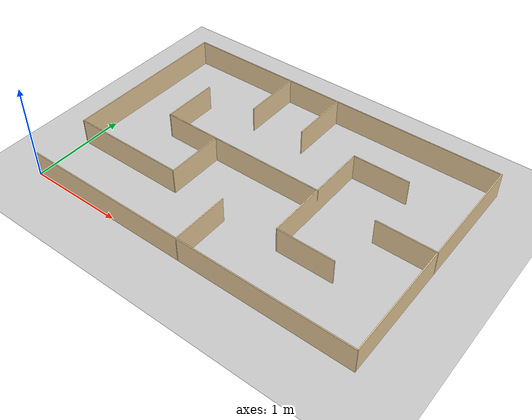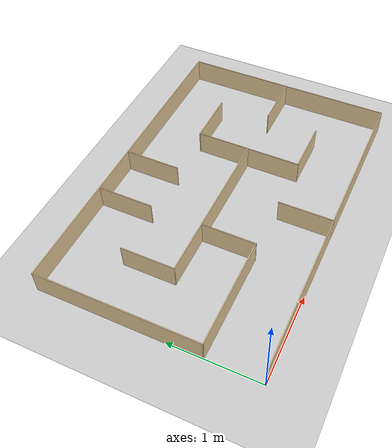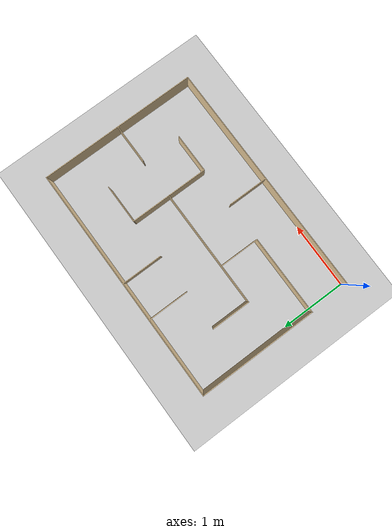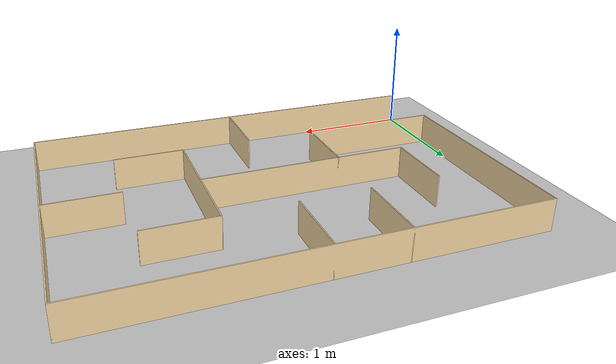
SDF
<?xml version="1.0" ?>
<sdf version="1.4">
  <world name="default">
    <scene>
      <ambient>0.5 0.5 0.5 1.0</ambient>
      <shadows>0</shadows>
    </scene>
    <include>
      <uri>model://ground_plane</uri>
    </include>
    <include>
      <uri>model://sun</uri>
    </include>

    <model name='labyrinth_normal2'>
    <pose frame=''>1.81 1.21 0 0 -0 0</pose>
    <link name='Wall_0'>
      <collision name='Wall_0_Collision'>
        <geometry>
          <box>
            <size>1.82 0.01 0.28</size>
          </box>
        </geometry>
        <pose frame=''>0 0 0.14 0 -0 0</pose>
      </collision>
      <visual name='Wall_0_Visual'>
        <pose frame=''>0 0 0.14 0 -0 0</pose>
        <geometry>
          <box>
            <size>1.82 0.01 0.28</size>
          </box>
        </geometry>
        <material>
          <script>
            <uri>file://media/materials/scripts/gazebo.material</uri>
            <name>Gazebo/Grey</name>
          </script>
          <ambient>0.921569 0.807843 0.615686 1</ambient>
        </material>
        <meta>
          <layer>0</layer>
        </meta>
      </visual>
      <pose frame=''>-1.81 0.305 0 0 -0 1.5708</pose>
    </link>
    <link name='Wall_10'>
      <collision name='Wall_10_Collision'>
        <geometry>
          <box>
            <size>0.61 0.01 0.28</size>
          </box>
        </geometry>
        <pose frame=''>0 0 0.14 0 -0 0</pose>
      </collision>
      <visual name='Wall_10_Visual'>
        <pose frame=''>0 0 0.14 0 -0 0</pose>
        <geometry>
          <box>
            <size>0.61 0.01 0.28</size>
          </box>
        </geometry>
        <material>
          <script>
            <uri>file://media/materials/scripts/gazebo.material</uri>
            <name>Gazebo/Grey</name>
          </script>
          <ambient>0.921569 0.807843 0.615686 1</ambient>
        </material>
        <meta>
          <layer>0</layer>
        </meta>
      </visual>
      <pose frame=''>1.51 0 0 0 -0 3.14159</pose>
    </link>
    <link name='Wall_12'>
      <collision name='Wall_12_Collision'>
        <geometry>
          <box>
            <size>0.63 0.01 0.28</size>
          </box>
        </geometry>
        <pose frame=''>0 0 0.14 0 -0 0</pose>
      </collision>
      <visual name='Wall_12_Visual'>
        <pose frame=''>0 0 0.14 0 -0 0</pose>
        <geometry>
          <box>
            <size>0.63 0.01 0.28</size>
          </box>
        </geometry>
        <material>
          <script>
            <uri>file://media/materials/scripts/gazebo.material</uri>
            <name>Gazebo/Grey</name>
          </script>
          <ambient>0.921569 0.807843 0.615686 1</ambient>
        </material>
        <meta>
          <layer>0</layer>
        </meta>
      </visual>
      <pose frame=''>-0.6 0.9 0 0 0 -1.5708</pose>
    </link>
    <link name='Wall_14'>
      <collision name='Wall_14_Collision'>
        <geometry>
          <box>
            <size>0.63 0.01 0.28</size>
          </box>
        </geometry>
        <pose frame=''>0 0 0.14 0 -0 0</pose>
      </collision>
      <visual name='Wall_14_Visual'>
        <pose frame=''>0 0 0.14 0 -0 0</pose>
        <geometry>
          <box>
            <size>0.63 0.01 0.28</size>
          </box>
        </geometry>
        <material>
          <script>
            <uri>file://media/materials/scripts/gazebo.material</uri>
            <name>Gazebo/Grey</name>
          </script>
          <ambient>0.921569 0.807843 0.615686 1</ambient>
        </material>
        <meta>
          <layer>0</layer>
        </meta>
      </visual>
      <pose frame=''>0 0.9 0 0 0 -1.5708</pose>
    </link>
    <link name='Wall_16'>
      <collision name='Wall_16_Collision'>
        <geometry>
          <box>
            <size>1.22 0.01 0.28</size>
          </box>
        </geometry>
        <pose frame=''>0 0 0.14 0 -0 0</pose>
      </collision>
      <visual name='Wall_16_Visual'>
        <pose frame=''>0 0 0.14 0 -0 0</pose>
        <geometry>
          <box>
            <size>1.22 0.01 0.28</size>
          </box>
        </geometry>
        <material>
          <script>
            <uri>file://media/materials/scripts/gazebo.material</uri>
            <name>Gazebo/Grey</name>
          </script>
          <ambient>0.921569 0.807843 0.615686 1</ambient>
        </material>
        <meta>
          <layer>0</layer>
        </meta>
      </visual>
      <pose frame=''>-1.205 -0.6 0 0 -0 0</pose>
    </link>
    <link name='Wall_18'>
      <collision name='Wall_18_Collision'>
        <geometry>
          <box>
            <size>0.61 0.01 0.28</size>
          </box>
        </geometry>
        <pose frame=''>0 0 0.14 0 -0 0</pose>
      </collision>
      <visual name='Wall_18_Visual'>
        <pose frame=''>0 0 0.14 0 -0 0</pose>
        <geometry>
          <box>
            <size>0.61 0.01 0.28</size>
          </box>
        </geometry>
        <material>
          <script>
            <uri>file://media/materials/scripts/gazebo.material</uri>
            <name>Gazebo/Grey</name>
          </script>
          <ambient>0.921569 0.807843 0.615686 1</ambient>
        </material>
        <meta>
          <layer>0</layer>
        </meta>
      </visual>
      <pose frame=''>-0.6 -0.3 0 0 -0 1.5708</pose>
    </link>
    <link name='Wall_2'>
      <collision name='Wall_2_Collision'>
        <geometry>
          <box>
            <size>3.63 0.01 0.28</size>
          </box>
        </geometry>
        <pose frame=''>0 0 0.14 0 -0 0</pose>
      </collision>
      <visual name='Wall_2_Visual'>
        <pose frame=''>0 0 0.14 0 -0 0</pose>
        <geometry>
          <box>
            <size>3.63 0.01 0.28</size>
          </box>
        </geometry>
        <material>
          <script>
            <uri>file://media/materials/scripts/gazebo.material</uri>
            <name>Gazebo/Grey</name>
          </script>
          <ambient>0.921569 0.807843 0.615686 1</ambient>
        </material>
        <meta>
          <layer>0</layer>
        </meta>
      </visual>
      <pose frame=''>0 1.21 0 0 -0 0</pose>
    </link>
    <link name='Wall_20'>
      <collision name='Wall_20_Collision'>
        <geometry>
          <box>
            <size>0.6 0.01 0.28</size>
          </box>
        </geometry>
        <pose frame=''>0 0 0.14 0 -0 0</pose>
      </collision>
      <visual name='Wall_20_Visual'>
        <pose frame=''>0 0 0.14 0 -0 0</pose>
        <geometry>
          <box>
            <size>0.6 0.01 0.28</size>
          </box>
        </geometry>
        <material>
          <script>
            <uri>file://media/materials/scripts/gazebo.material</uri>
            <name>Gazebo/Grey</name>
          </script>
          <ambient>0.921569 0.807843 0.615686 1</ambient>
        </material>
        <meta>
          <layer>0</layer>
        </meta>
      </visual>
      <pose frame=''>-1.2 0.295 0 0 0 -1.5708</pose>
    </link>
    <link name='Wall_22'>
      <collision name='Wall_22_Collision'>
        <geometry>
          <box>
            <size>1.81 0.01 0.28</size>
          </box>
        </geometry>
        <pose frame=''>0 0 0.14 0 -0 0</pose>
      </collision>
      <visual name='Wall_22_Visual'>
        <pose frame=''>0 0 0.14 0 -0 0</pose>
        <geometry>
          <box>
            <size>1.81 0.01 0.28</size>
          </box>
        </geometry>
        <material>
          <script>
            <uri>file://media/materials/scripts/gazebo.material</uri>
            <name>Gazebo/Grey</name>
          </script>
          <ambient>0.921569 0.807843 0.615686 1</ambient>
        </material>
        <meta>
          <layer>0</layer>
        </meta>
      </visual>
      <pose frame=''>-0.3 0 0 0 -0 0</pose>
    </link>
    <link name='Wall_24'>
      <collision name='Wall_24_Collision'>
        <geometry>
          <box>
            <size>1.21 0.01 0.28</size>
          </box>
        </geometry>
        <pose frame=''>0 0 0.14 0 -0 0</pose>
      </collision>
      <visual name='Wall_24_Visual'>
        <pose frame=''>0 0 0.14 0 -0 0</pose>
        <geometry>
          <box>
            <size>1.21 0.01 0.28</size>
          </box>
        </geometry>
        <material>
          <script>
            <uri>file://media/materials/scripts/gazebo.material</uri>
            <name>Gazebo/Grey</name>
          </script>
          <ambient>0.921569 0.807843 0.615686 1</ambient>
        </material>
        <meta>
          <layer>0</layer>
        </meta>
      </visual>
      <pose frame=''>0.6 0 0 0 0 -1.5708</pose>
    </link>
    <link name='Wall_26'>
      <collision name='Wall_26_Collision'>
        <geometry>
          <box>
            <size>0.6 0.01 0.28</size>
          </box>
        </geometry>
        <pose frame=''>0 0 0.14 0 -0 0</pose>
      </collision>
      <visual name='Wall_26_Visual'>
        <pose frame=''>0 0 0.14 0 -0 0</pose>
        <geometry>
          <box>
            <size>0.6 0.01 0.28</size>
          </box>
        </geometry>
        <material>
          <script>
            <uri>file://media/materials/scripts/gazebo.material</uri>
            <name>Gazebo/Grey</name>
          </script>
          <ambient>0.921569 0.807843 0.615686 1</ambient>
        </material>
        <meta>
          <layer>0</layer>
        </meta>
      </visual>
      <pose frame=''>0.895 0.6 0 0 -0 0</pose>
    </link>
    <link name='Wall_28'>
      <collision name='Wall_28_Collision'>
        <geometry>
          <box>
            <size>0.6 0.01 0.28</size>
          </box>
        </geometry>
        <pose frame=''>0 0 0.14 0 -0 0</pose>
      </collision>
      <visual name='Wall_28_Visual'>
        <pose frame=''>0 0 0.14 0 -0 0</pose>
        <geometry>
          <box>
            <size>0.6 0.01 0.28</size>
          </box>
        </geometry>
        <material>
          <script>
            <uri>file://media/materials/scripts/gazebo.material</uri>
            <name>Gazebo/Grey</name>
          </script>
          <ambient>0.921569 0.807843 0.615686 1</ambient>
        </material>
        <meta>
          <layer>0</layer>
        </meta>
      </visual>
      <pose frame=''>0.895 -0.6 0 0 -0 0</pose>
    </link>
    <link name='Wall_4'>
      <collision name='Wall_4_Collision'>
        <geometry>
          <box>
            <size>2.43 0.01 0.28</size>
          </box>
        </geometry>
        <pose frame=''>0 0 0.14 0 -0 0</pose>
      </collision>
      <visual name='Wall_4_Visual'>
        <pose frame=''>0 0 0.14 0 -0 0</pose>
        <geometry>
          <box>
            <size>2.43 0.01 0.28</size>
          </box>
        </geometry>
        <material>
          <script>
            <uri>file://media/materials/scripts/gazebo.material</uri>
            <name>Gazebo/Grey</name>
          </script>
          <ambient>0.921569 0.807843 0.615686 1</ambient>
        </material>
        <meta>
          <layer>0</layer>
        </meta>
      </visual>
      <pose frame=''>1.81 0 0 0 0 -1.5708</pose>
    </link>
    <link name='Wall_6'>
      <collision name='Wall_6_Collision'>
        <geometry>
          <box>
            <size>3.63 0.01 0.28</size>
          </box>
        </geometry>
        <pose frame=''>0 0 0.14 0 -0 0</pose>
      </collision>
      <visual name='Wall_6_Visual'>
        <pose frame=''>0 0 0.14 0 -0 0</pose>
        <geometry>
          <box>
            <size>3.63 0.01 0.28</size>
          </box>
        </geometry>
        <material>
          <script>
            <uri>file://media/materials/scripts/gazebo.material</uri>
            <name>Gazebo/Grey</name>
          </script>
          <ambient>0.921569 0.807843 0.615686 1</ambient>
        </material>
        <meta>
          <layer>0</layer>
        </meta>
      </visual>
      <pose frame=''>0 -1.21 0 0 -0 3.14159</pose>
    </link>
    <link name='Wall_8'>
      <collision name='Wall_8_Collision'>
        <geometry>
          <box>
            <size>0.61 0.01 0.28</size>
          </box>
        </geometry>
        <pose frame=''>0 0 0.14 0 -0 0</pose>
      </collision>
      <visual name='Wall_8_Visual'>
        <pose frame=''>0 0 0.14 0 -0 0</pose>
        <geometry>
          <box>
            <size>0.61 0.01 0.28</size>
          </box>
        </geometry>
        <material>
          <script>
            <uri>file://media/materials/scripts/gazebo.material</uri>
            <name>Gazebo/Grey</name>
          </script>
          <ambient>0.921569 0.807843 0.615686 1</ambient>
        </material>
        <meta>
          <layer>0</layer>
        </meta>
      </visual>
      <pose frame=''>0 -0.91 0 0 -0 1.5708</pose>
    </link>
    <static>1</static>
  </model>

  </world>
</sdf>
